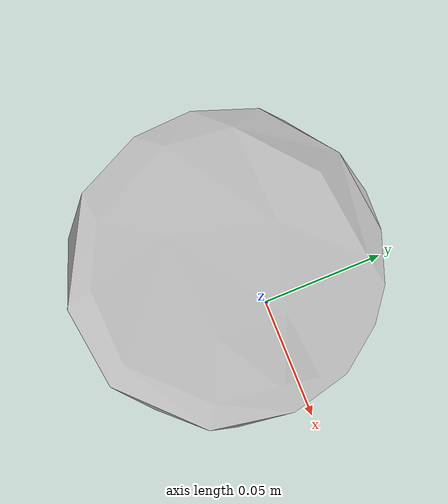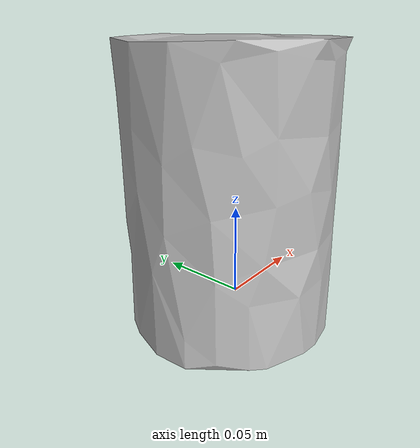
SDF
<?xml version='1.0'?>
<sdf version="1.4">
  <model name="002_master_chef_can">
    <static>false</static>
    <link name="link">
      <inertial>
        <pose>-0.01710841454070783 -0.009808595718284425 0.07006329320532795 0.0012148628926763516 -0.0014059643711658294 3.062002966131569</pose>
        <mass>0.11415636362349622</mass>
        <inertia>
          <ixx>0.00026022386072310257</ixx>
          <ixy>-1.596905860005242e-20</ixy>
          <ixz>-1.364622627579756e-20</ixz>
          <iyy>0.00026007459655267136</iyy>
          <iyz>-2.4255450622035555e-20</iyz>
          <izz>0.0001481777086922891</izz>
        </inertia>
      </inertial>
      <collision name="collision">
        <geometry>
          <mesh>
            <!-- Use a downsampled mesh for collisions -->
            <uri>model:///002_master_chef_can/002_master_chef_can_250_collision.stl</uri>
	        </mesh>
        </geometry>
        <surface>
      </surface>
      </collision>
      <visual name="visual">
        <geometry>
          <mesh>
            <uri>model:///002_master_chef_can/textured.obj</uri>
	        </mesh>
        </geometry>
        <material>
          <script>
            <uri>model:///002_master_chef_can/002_master_chef_can.material</uri>
            <name>002_master_chef_can</name>
          </script>
        </material>
      </visual>
    </link>
  </model>
</sdf>
